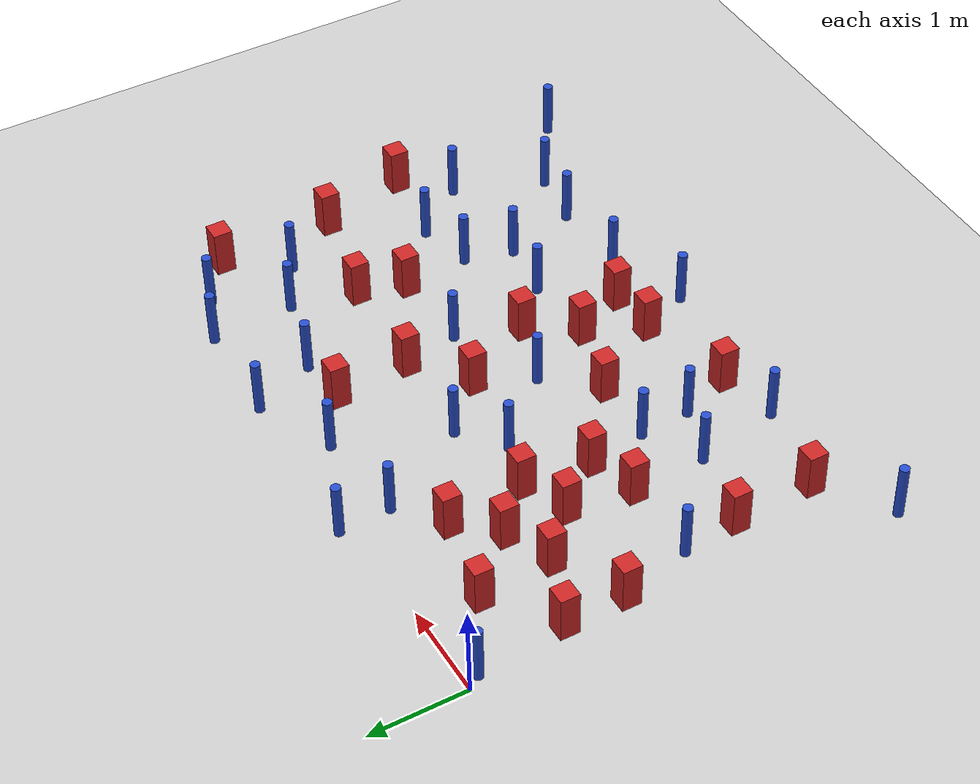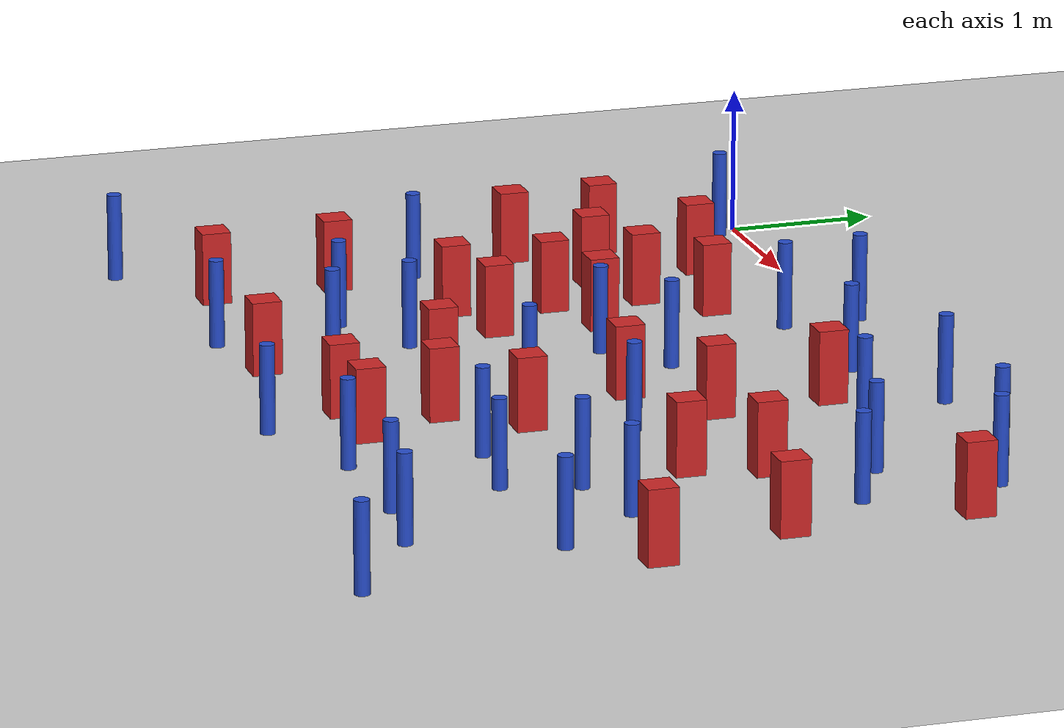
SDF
<sdf version="1.6">
 <world name="default">
  <model name="ground_plane">
   <static>1</static>
   <link name="link">
    <collision name="collision">
     <geometry><plane><normal>0 0 1</normal><size>100 100</size></plane></geometry>
     <surface><friction><ode><mu>100</mu><mu2>50</mu2></ode></friction></surface>
    </collision>
    <visual name="visual">
     <cast_shadows>0</cast_shadows>
     <geometry><plane><normal>0 0 1</normal><size>100 100</size></plane></geometry>
     <material>
      <ambient>1.0 1.0 1.0 1.0</ambient>
      <diffuse>0.8 0.8 0.8 1.0</diffuse>
      <specular>0.01 0.01 0.01 1.000000</specular>
     </material>
    </visual>
   </link>
  </model>
  <model name="NamedLocations">
   <static>true</static>
   <link name="DefaultStart"><pose>8.5 0 0 0 0 3.14</pose></link>
  </model>
  <model name="square_post_obstacle2">
   <static>true</static>
   <pose>6.3926269093 -2.64157302323 1.91545236811e-07 -7.35059704564e-06 1.12565212e-07 2.39332434364e-05</pose>
   <link name="link">
    <pose>0 0 0.25 0 -0 0</pose>
    <inertial>
     <mass>100</mass>
     <inertia>
      <ixx>0.166667</ixx>
      <ixy>0</ixy>
      <ixz>0</ixz>
      <iyy>0.166667</iyy>
      <iyz>0</iyz>
      <izz>0.166667</izz>
     </inertia>
    </inertial>
    <collision name="collision"><geometry><box><size>.2 .2 .5</size></box></geometry></collision>
    <visual name="visual">
     <geometry><box><size>.2 .2 .5</size></box></geometry>
     <material>
      <script><name>Gazebo/Red</name><uri>file://media/materials/scripts/gazebo.material</uri></script>
     </material>
    </visual>
   </link>
  </model>
  <model name="square_post_obstacle3">
   <static>true</static>
   <pose>3.27385072812 -1.84511736935 1.91545236811e-07 -7.35059704564e-06 1.12565212e-07 2.39332434364e-05</pose>
   <link name="link">
    <pose>0 0 0.25 0 -0 0</pose>
    <inertial>
     <mass>100</mass>
     <inertia>
      <ixx>0.166667</ixx>
      <ixy>0</ixy>
      <ixz>0</ixz>
      <iyy>0.166667</iyy>
      <iyz>0</iyz>
      <izz>0.166667</izz>
     </inertia>
    </inertial>
    <collision name="collision"><geometry><box><size>.2 .2 .5</size></box></geometry></collision>
    <visual name="visual">
     <geometry><box><size>.2 .2 .5</size></box></geometry>
     <material>
      <script><name>Gazebo/Red</name><uri>file://media/materials/scripts/gazebo.material</uri></script>
     </material>
    </visual>
   </link>
  </model>
  <model name="square_post_obstacle6">
   <static>true</static>
   <pose>6.1314204804 -1.70435228454 1.91545236811e-07 -7.35059704564e-06 1.12565212e-07 2.39332434364e-05</pose>
   <link name="link">
    <pose>0 0 0.25 0 -0 0</pose>
    <inertial>
     <mass>100</mass>
     <inertia>
      <ixx>0.166667</ixx>
      <ixy>0</ixy>
      <ixz>0</ixz>
      <iyy>0.166667</iyy>
      <iyz>0</iyz>
      <izz>0.166667</izz>
     </inertia>
    </inertial>
    <collision name="collision"><geometry><box><size>.2 .2 .5</size></box></geometry></collision>
    <visual name="visual">
     <geometry><box><size>.2 .2 .5</size></box></geometry>
     <material>
      <script><name>Gazebo/Red</name><uri>file://media/materials/scripts/gazebo.material</uri></script>
     </material>
    </visual>
   </link>
  </model>
  <model name="pole_obstacle9">
   <static>true</static>
   <pose>3.03887440964 -2.42761712967 7.38925637345e-09 -8.47170692798e-08 1.24976764939e-08 -1.74513093025e-07</pose>
   <link name="link">
    <pose>0 0 0.3 0 -0 0</pose>
    <inertial>
     <mass>1</mass>
     <inertia><ixx>0.145833</ixx><ixy>0</ixy><ixz>0</ixz><iyy>0.145833</iyy><iyz>0</iyz><izz>0.125</izz></inertia>
    </inertial>
    <collision name="collision">
     <geometry><cylinder><radius>0.05</radius><length>.6</length></cylinder></geometry>
    </collision>
    <visual name="visual">
     <geometry><cylinder><radius>0.05</radius><length>.6</length></cylinder></geometry>
     <material>
      <script><name>Gazebo/Blue</name><uri>file://media/materials/scripts/gazebo.material</uri></script>
     </material>
    </visual>
   </link>
  </model>
  <model name="pole_obstacle15">
   <static>true</static>
   <pose>5.99334380468 -3.10721899709 7.38925637345e-09 -8.47170692798e-08 1.24976764937e-08 -1.74513093023e-07</pose>
   <link name="link">
    <pose>0 0 0.3 0 -0 0</pose>
    <inertial>
     <mass>1</mass>
     <inertia><ixx>0.145833</ixx><ixy>0</ixy><ixz>0</ixz><iyy>0.145833</iyy><iyz>0</iyz><izz>0.125</izz></inertia>
    </inertial>
    <collision name="collision">
     <geometry><cylinder><radius>0.05</radius><length>.6</length></cylinder></geometry>
    </collision>
    <visual name="visual">
     <geometry><cylinder><radius>0.05</radius><length>.6</length></cylinder></geometry>
     <material>
      <script><name>Gazebo/Blue</name><uri>file://media/materials/scripts/gazebo.material</uri></script>
     </material>
    </visual>
   </link>
  </model>
  <model name="pole_obstacle19">
   <static>true</static>
   <pose>5.63549042282 -4.02155629917 7.38925637345e-09 -8.47170692796e-08 1.24976764791e-08 -1.74513093031e-07</pose>
   <link name="link">
    <pose>0 0 0.3 0 -0 0</pose>
    <inertial>
     <mass>1</mass>
     <inertia><ixx>0.145833</ixx><ixy>0</ixy><ixz>0</ixz><iyy>0.145833</iyy><iyz>0</iyz><izz>0.125</izz></inertia>
    </inertial>
    <collision name="collision">
     <geometry><cylinder><radius>0.05</radius><length>.6</length></cylinder></geometry>
    </collision>
    <visual name="visual">
     <geometry><cylinder><radius>0.05</radius><length>.6</length></cylinder></geometry>
     <material>
      <script><name>Gazebo/Blue</name><uri>file://media/materials/scripts/gazebo.material</uri></script>
     </material>
    </visual>
   </link>
  </model>
  <model name="square_post_obstacle16">
   <static>true</static>
   <pose>2.55825330878 -2.89611396729 1.91545236811e-07 -7.35059704564e-06 1.12565212e-07 2.39332434364e-05</pose>
   <link name="link">
    <pose>0 0 0.25 0 -0 0</pose>
    <inertial>
     <mass>100</mass>
     <inertia>
      <ixx>0.166667</ixx>
      <ixy>0</ixy>
      <ixz>0</ixz>
      <iyy>0.166667</iyy>
      <iyz>0</iyz>
      <izz>0.166667</izz>
     </inertia>
    </inertial>
    <collision name="collision"><geometry><box><size>.2 .2 .5</size></box></geometry></collision>
    <visual name="visual">
     <geometry><box><size>.2 .2 .5</size></box></geometry>
     <material>
      <script><name>Gazebo/Red</name><uri>file://media/materials/scripts/gazebo.material</uri></script>
     </material>
    </visual>
   </link>
  </model>
  <model name="pole_obstacle20">
   <static>true</static>
   <pose>2.22428863195 -0.391369599084 7.38925637345e-09 -8.471706928e-08 1.24976765172e-08 -1.74513093013e-07</pose>
   <link name="link">
    <pose>0 0 0.3 0 -0 0</pose>
    <inertial>
     <mass>1</mass>
     <inertia><ixx>0.145833</ixx><ixy>0</ixy><ixz>0</ixz><iyy>0.145833</iyy><iyz>0</iyz><izz>0.125</izz></inertia>
    </inertial>
    <collision name="collision">
     <geometry><cylinder><radius>0.05</radius><length>.6</length></cylinder></geometry>
    </collision>
    <visual name="visual">
     <geometry><cylinder><radius>0.05</radius><length>.6</length></cylinder></geometry>
     <material>
      <script><name>Gazebo/Blue</name><uri>file://media/materials/scripts/gazebo.material</uri></script>
     </material>
    </visual>
   </link>
  </model>
  <model name="square_post_obstacle18">
   <static>true</static>
   <pose>0.514636242237 -3.88962319908 1.91545236811e-07 -7.35059704564e-06 1.12565212e-07 2.39332434364e-05</pose>
   <link name="link">
    <pose>0 0 0.25 0 -0 0</pose>
    <inertial>
     <mass>100</mass>
     <inertia>
      <ixx>0.166667</ixx>
      <ixy>0</ixy>
      <ixz>0</ixz>
      <iyy>0.166667</iyy>
      <iyz>0</iyz>
      <izz>0.166667</izz>
     </inertia>
    </inertial>
    <collision name="collision"><geometry><box><size>.2 .2 .5</size></box></geometry></collision>
    <visual name="visual">
     <geometry><box><size>.2 .2 .5</size></box></geometry>
     <material>
      <script><name>Gazebo/Red</name><uri>file://media/materials/scripts/gazebo.material</uri></script>
     </material>
    </visual>
   </link>
  </model>
  <model name="pole_obstacle27">
   <static>true</static>
   <pose>4.81260913132 -3.16883547511 7.38925637345e-09 -8.47170692798e-08 1.24976764937e-08 -1.74513093023e-07</pose>
   <link name="link">
    <pose>0 0 0.3 0 -0 0</pose>
    <inertial>
     <mass>1</mass>
     <inertia><ixx>0.145833</ixx><ixy>0</ixy><ixz>0</ixz><iyy>0.145833</iyy><iyz>0</iyz><izz>0.125</izz></inertia>
    </inertial>
    <collision name="collision">
     <geometry><cylinder><radius>0.05</radius><length>.6</length></cylinder></geometry>
    </collision>
    <visual name="visual">
     <geometry><cylinder><radius>0.05</radius><length>.6</length></cylinder></geometry>
     <material>
      <script><name>Gazebo/Blue</name><uri>file://media/materials/scripts/gazebo.material</uri></script>
     </material>
    </visual>
   </link>
  </model>
  <model name="pole_obstacle45">
   <static>true</static>
   <pose>2.36693494782 -1.72952873649 7.38925637345e-09 -8.471706928e-08 1.24976765152e-08 -1.74513093012e-07</pose>
   <link name="link">
    <pose>0 0 0.3 0 -0 0</pose>
    <inertial>
     <mass>1</mass>
     <inertia><ixx>0.145833</ixx><ixy>0</ixy><ixz>0</ixz><iyy>0.145833</iyy><iyz>0</iyz><izz>0.125</izz></inertia>
    </inertial>
    <collision name="collision">
     <geometry><cylinder><radius>0.05</radius><length>.6</length></cylinder></geometry>
    </collision>
    <visual name="visual">
     <geometry><cylinder><radius>0.05</radius><length>.6</length></cylinder></geometry>
     <material>
      <script><name>Gazebo/Blue</name><uri>file://media/materials/scripts/gazebo.material</uri></script>
     </material>
    </visual>
   </link>
  </model>
  <model name="pole_obstacle46">
   <static>true</static>
   <pose>5.72600170313 -1.09125582799 7.38925637345e-09 -8.471706928e-08 1.24976765134e-08 -1.74513093015e-07</pose>
   <link name="link">
    <pose>0 0 0.3 0 -0 0</pose>
    <inertial>
     <mass>1</mass>
     <inertia><ixx>0.145833</ixx><ixy>0</ixy><ixz>0</ixz><iyy>0.145833</iyy><iyz>0</iyz><izz>0.125</izz></inertia>
    </inertial>
    <collision name="collision">
     <geometry><cylinder><radius>0.05</radius><length>.6</length></cylinder></geometry>
    </collision>
    <visual name="visual">
     <geometry><cylinder><radius>0.05</radius><length>.6</length></cylinder></geometry>
     <material>
      <script><name>Gazebo/Blue</name><uri>file://media/materials/scripts/gazebo.material</uri></script>
     </material>
    </visual>
   </link>
  </model>
  <model name="pole_obstacle55">
   <static>true</static>
   <pose>5.19176129301 -0.812803538557 7.38925637345e-09 -8.47170692799e-08 1.24976765038e-08 -1.74513093018e-07</pose>
   <link name="link">
    <pose>0 0 0.3 0 -0 0</pose>
    <inertial>
     <mass>1</mass>
     <inertia><ixx>0.145833</ixx><ixy>0</ixy><ixz>0</ixz><iyy>0.145833</iyy><iyz>0</iyz><izz>0.125</izz></inertia>
    </inertial>
    <collision name="collision">
     <geometry><cylinder><radius>0.05</radius><length>.6</length></cylinder></geometry>
    </collision>
    <visual name="visual">
     <geometry><cylinder><radius>0.05</radius><length>.6</length></cylinder></geometry>
     <material>
      <script><name>Gazebo/Blue</name><uri>file://media/materials/scripts/gazebo.material</uri></script>
     </material>
    </visual>
   </link>
  </model>
  <model name="pole_obstacle62">
   <static>true</static>
   <pose>3.34065110433 -4.27121757846 7.38925637345e-09 -8.47170692798e-08 1.24976765033e-08 -1.74513093019e-07</pose>
   <link name="link">
    <pose>0 0 0.3 0 -0 0</pose>
    <inertial>
     <mass>1</mass>
     <inertia><ixx>0.145833</ixx><ixy>0</ixy><ixz>0</ixz><iyy>0.145833</iyy><iyz>0</iyz><izz>0.125</izz></inertia>
    </inertial>
    <collision name="collision">
     <geometry><cylinder><radius>0.05</radius><length>.6</length></cylinder></geometry>
    </collision>
    <visual name="visual">
     <geometry><cylinder><radius>0.05</radius><length>.6</length></cylinder></geometry>
     <material>
      <script><name>Gazebo/Blue</name><uri>file://media/materials/scripts/gazebo.material</uri></script>
     </material>
    </visual>
   </link>
  </model>
  <model name="pole_obstacle70">
   <static>true</static>
   <pose>-0.162355351568 -4.40679798195 7.38925637345e-09 -8.47170692799e-08 1.24976765043e-08 -1.74513093019e-07</pose>
   <link name="link">
    <pose>0 0 0.3 0 -0 0</pose>
    <inertial>
     <mass>1</mass>
     <inertia><ixx>0.145833</ixx><ixy>0</ixy><ixz>0</ixz><iyy>0.145833</iyy><iyz>0</iyz><izz>0.125</izz></inertia>
    </inertial>
    <collision name="collision">
     <geometry><cylinder><radius>0.05</radius><length>.6</length></cylinder></geometry>
    </collision>
    <visual name="visual">
     <geometry><cylinder><radius>0.05</radius><length>.6</length></cylinder></geometry>
     <material>
      <script><name>Gazebo/Blue</name><uri>file://media/materials/scripts/gazebo.material</uri></script>
     </material>
    </visual>
   </link>
  </model>
  <model name="square_post_obstacle60">
   <static>true</static>
   <pose>3.82546768321 -1.41174649377 1.91545236811e-07 -7.35059704564e-06 1.12565212e-07 2.39332434364e-05</pose>
   <link name="link">
    <pose>0 0 0.25 0 -0 0</pose>
    <inertial>
     <mass>100</mass>
     <inertia>
      <ixx>0.166667</ixx>
      <ixy>0</ixy>
      <ixz>0</ixz>
      <iyy>0.166667</iyy>
      <iyz>0</iyz>
      <izz>0.166667</izz>
     </inertia>
    </inertial>
    <collision name="collision"><geometry><box><size>.2 .2 .5</size></box></geometry></collision>
    <visual name="visual">
     <geometry><box><size>.2 .2 .5</size></box></geometry>
     <material>
      <script><name>Gazebo/Red</name><uri>file://media/materials/scripts/gazebo.material</uri></script>
     </material>
    </visual>
   </link>
  </model>
  <model name="square_post_obstacle61">
   <static>true</static>
   <pose>3.09541691466 -3.71565374663 1.91545236811e-07 -7.35059704564e-06 1.12565212e-07 2.39332434364e-05</pose>
   <link name="link">
    <pose>0 0 0.25 0 -0 0</pose>
    <inertial>
     <mass>100</mass>
     <inertia>
      <ixx>0.166667</ixx>
      <ixy>0</ixy>
      <ixz>0</ixz>
      <iyy>0.166667</iyy>
      <iyz>0</iyz>
      <izz>0.166667</izz>
     </inertia>
    </inertial>
    <collision name="collision"><geometry><box><size>.2 .2 .5</size></box></geometry></collision>
    <visual name="visual">
     <geometry><box><size>.2 .2 .5</size></box></geometry>
     <material>
      <script><name>Gazebo/Red</name><uri>file://media/materials/scripts/gazebo.material</uri></script>
     </material>
    </visual>
   </link>
  </model>
  <model name="pole_obstacle71">
   <static>true</static>
   <pose>5.14210738571 0.0508689174394 7.38925637345e-09 -8.471706928e-08 1.24976765155e-08 -1.74513093014e-07</pose>
   <link name="link">
    <pose>0 0 0.3 0 -0 0</pose>
    <inertial>
     <mass>1</mass>
     <inertia><ixx>0.145833</ixx><ixy>0</ixy><ixz>0</ixz><iyy>0.145833</iyy><iyz>0</iyz><izz>0.125</izz></inertia>
    </inertial>
    <collision name="collision">
     <geometry><cylinder><radius>0.05</radius><length>.6</length></cylinder></geometry>
    </collision>
    <visual name="visual">
     <geometry><cylinder><radius>0.05</radius><length>.6</length></cylinder></geometry>
     <material>
      <script><name>Gazebo/Blue</name><uri>file://media/materials/scripts/gazebo.material</uri></script>
     </material>
    </visual>
   </link>
  </model>
  <model name="pole_obstacle78">
   <static>true</static>
   <pose>1.91681095003 -3.44139739573 7.38925637345e-09 -8.47170692799e-08 1.24976765053e-08 -1.74513093017e-07</pose>
   <link name="link">
    <pose>0 0 0.3 0 -0 0</pose>
    <inertial>
     <mass>1</mass>
     <inertia><ixx>0.145833</ixx><ixy>0</ixy><ixz>0</ixz><iyy>0.145833</iyy><iyz>0</iyz><izz>0.125</izz></inertia>
    </inertial>
    <collision name="collision">
     <geometry><cylinder><radius>0.05</radius><length>.6</length></cylinder></geometry>
    </collision>
    <visual name="visual">
     <geometry><cylinder><radius>0.05</radius><length>.6</length></cylinder></geometry>
     <material>
      <script><name>Gazebo/Blue</name><uri>file://media/materials/scripts/gazebo.material</uri></script>
     </material>
    </visual>
   </link>
  </model>
  <model name="pole_obstacle79">
   <static>true</static>
   <pose>4.95157832996 -2.67029670828 7.38925637345e-09 -8.47170692798e-08 1.24976764937e-08 -1.74513093023e-07</pose>
   <link name="link">
    <pose>0 0 0.3 0 -0 0</pose>
    <inertial>
     <mass>1</mass>
     <inertia><ixx>0.145833</ixx><ixy>0</ixy><ixz>0</ixz><iyy>0.145833</iyy><iyz>0</iyz><izz>0.125</izz></inertia>
    </inertial>
    <collision name="collision">
     <geometry><cylinder><radius>0.05</radius><length>.6</length></cylinder></geometry>
    </collision>
    <visual name="visual">
     <geometry><cylinder><radius>0.05</radius><length>.6</length></cylinder></geometry>
     <material>
      <script><name>Gazebo/Blue</name><uri>file://media/materials/scripts/gazebo.material</uri></script>
     </material>
    </visual>
   </link>
  </model>
  <model name="square_post_obstacle78">
   <static>true</static>
   <pose>0.469554378919 -3.02683524123 1.91545236811e-07 -7.35059704564e-06 1.12565212e-07 2.39332434364e-05</pose>
   <link name="link">
    <pose>0 0 0.25 0 -0 0</pose>
    <inertial>
     <mass>100</mass>
     <inertia>
      <ixx>0.166667</ixx>
      <ixy>0</ixy>
      <ixz>0</ixz>
      <iyy>0.166667</iyy>
      <iyz>0</iyz>
      <izz>0.166667</izz>
     </inertia>
    </inertial>
    <collision name="collision"><geometry><box><size>.2 .2 .5</size></box></geometry></collision>
    <visual name="visual">
     <geometry><box><size>.2 .2 .5</size></box></geometry>
     <material>
      <script><name>Gazebo/Red</name><uri>file://media/materials/scripts/gazebo.material</uri></script>
     </material>
    </visual>
   </link>
  </model>
  <model name="square_post_obstacle89">
   <static>true</static>
   <pose>1.25679714308 -2.42203078586 1.91545236811e-07 -7.35059704564e-06 1.12565212e-07 2.39332434364e-05</pose>
   <link name="link">
    <pose>0 0 0.25 0 -0 0</pose>
    <inertial>
     <mass>100</mass>
     <inertia>
      <ixx>0.166667</ixx>
      <ixy>0</ixy>
      <ixz>0</ixz>
      <iyy>0.166667</iyy>
      <iyz>0</iyz>
      <izz>0.166667</izz>
     </inertia>
    </inertial>
    <collision name="collision"><geometry><box><size>.2 .2 .5</size></box></geometry></collision>
    <visual name="visual">
     <geometry><box><size>.2 .2 .5</size></box></geometry>
     <material>
      <script><name>Gazebo/Red</name><uri>file://media/materials/scripts/gazebo.material</uri></script>
     </material>
    </visual>
   </link>
  </model>
  <model name="square_post_obstacle90">
   <static>true</static>
   <pose>6.12686189905 -0.49162726828 1.91545236811e-07 -7.35059704564e-06 1.12565212e-07 2.39332434364e-05</pose>
   <link name="link">
    <pose>0 0 0.25 0 -0 0</pose>
    <inertial>
     <mass>100</mass>
     <inertia>
      <ixx>0.166667</ixx>
      <ixy>0</ixy>
      <ixz>0</ixz>
      <iyy>0.166667</iyy>
      <iyz>0</iyz>
      <izz>0.166667</izz>
     </inertia>
    </inertial>
    <collision name="collision"><geometry><box><size>.2 .2 .5</size></box></geometry></collision>
    <visual name="visual">
     <geometry><box><size>.2 .2 .5</size></box></geometry>
     <material>
      <script><name>Gazebo/Red</name><uri>file://media/materials/scripts/gazebo.material</uri></script>
     </material>
    </visual>
   </link>
  </model>
  <model name="square_post_obstacle97">
   <static>true</static>
   <pose>3.36069773524 -3.1268799618 1.91545236811e-07 -7.35059704564e-06 1.12565212e-07 2.39332434364e-05</pose>
   <link name="link">
    <pose>0 0 0.25 0 -0 0</pose>
    <inertial>
     <mass>100</mass>
     <inertia>
      <ixx>0.166667</ixx>
      <ixy>0</ixy>
      <ixz>0</ixz>
      <iyy>0.166667</iyy>
      <iyz>0</iyz>
      <izz>0.166667</izz>
     </inertia>
    </inertial>
    <collision name="collision"><geometry><box><size>.2 .2 .5</size></box></geometry></collision>
    <visual name="visual">
     <geometry><box><size>.2 .2 .5</size></box></geometry>
     <material>
      <script><name>Gazebo/Red</name><uri>file://media/materials/scripts/gazebo.material</uri></script>
     </material>
    </visual>
   </link>
  </model>
  <model name="pole_obstacle103">
   <static>true</static>
   <pose>5.66957192668 -0.15631160696 7.38925637345e-09 -8.471706928e-08 1.24976765188e-08 -1.74513093011e-07</pose>
   <link name="link">
    <pose>0 0 0.3 0 -0 0</pose>
    <inertial>
     <mass>1</mass>
     <inertia><ixx>0.145833</ixx><ixy>0</ixy><ixz>0</ixz><iyy>0.145833</iyy><iyz>0</iyz><izz>0.125</izz></inertia>
    </inertial>
    <collision name="collision">
     <geometry><cylinder><radius>0.05</radius><length>.6</length></cylinder></geometry>
    </collision>
    <visual name="visual">
     <geometry><cylinder><radius>0.05</radius><length>.6</length></cylinder></geometry>
     <material>
      <script><name>Gazebo/Blue</name><uri>file://media/materials/scripts/gazebo.material</uri></script>
     </material>
    </visual>
   </link>
  </model>
  <model name="square_post_obstacle100">
   <static>true</static>
   <pose>1.74360261674 -0.739991999702 1.91545236811e-07 -7.35059704564e-06 1.12565212e-07 2.39332434364e-05</pose>
   <link name="link">
    <pose>0 0 0.25 0 -0 0</pose>
    <inertial>
     <mass>100</mass>
     <inertia>
      <ixx>0.166667</ixx>
      <ixy>0</ixy>
      <ixz>0</ixz>
      <iyy>0.166667</iyy>
      <iyz>0</iyz>
      <izz>0.166667</izz>
     </inertia>
    </inertial>
    <collision name="collision"><geometry><box><size>.2 .2 .5</size></box></geometry></collision>
    <visual name="visual">
     <geometry><box><size>.2 .2 .5</size></box></geometry>
     <material>
      <script><name>Gazebo/Red</name><uri>file://media/materials/scripts/gazebo.material</uri></script>
     </material>
    </visual>
   </link>
  </model>
  <model name="pole_obstacle109">
   <static>true</static>
   <pose>0.101150819046 -0.137770015602 7.38925637345e-09 -8.47170692798e-08 1.2497676491e-08 -1.74513093026e-07</pose>
   <link name="link">
    <pose>0 0 0.3 0 -0 0</pose>
    <inertial>
     <mass>1</mass>
     <inertia><ixx>0.145833</ixx><ixy>0</ixy><ixz>0</ixz><iyy>0.145833</iyy><iyz>0</iyz><izz>0.125</izz></inertia>
    </inertial>
    <collision name="collision">
     <geometry><cylinder><radius>0.05</radius><length>.6</length></cylinder></geometry>
    </collision>
    <visual name="visual">
     <geometry><cylinder><radius>0.05</radius><length>.6</length></cylinder></geometry>
     <material>
      <script><name>Gazebo/Blue</name><uri>file://media/materials/scripts/gazebo.material</uri></script>
     </material>
    </visual>
   </link>
  </model>
  <model name="square_post_obstacle107">
   <static>true</static>
   <pose>3.7143663494 -2.64420694901 1.91545236811e-07 -7.35059704564e-06 1.12565212e-07 2.39332434364e-05</pose>
   <link name="link">
    <pose>0 0 0.25 0 -0 0</pose>
    <inertial>
     <mass>100</mass>
     <inertia>
      <ixx>0.166667</ixx>
      <ixy>0</ixy>
      <ixz>0</ixz>
      <iyy>0.166667</iyy>
      <iyz>0</iyz>
      <izz>0.166667</izz>
     </inertia>
    </inertial>
    <collision name="collision"><geometry><box><size>.2 .2 .5</size></box></geometry></collision>
    <visual name="visual">
     <geometry><box><size>.2 .2 .5</size></box></geometry>
     <material>
      <script><name>Gazebo/Red</name><uri>file://media/materials/scripts/gazebo.material</uri></script>
     </material>
    </visual>
   </link>
  </model>
  <model name="pole_obstacle112">
   <static>true</static>
   <pose>1.31474869188 -3.22986475585 7.38925637345e-09 -8.47170692799e-08 1.24976765053e-08 -1.74513093017e-07</pose>
   <link name="link">
    <pose>0 0 0.3 0 -0 0</pose>
    <inertial>
     <mass>1</mass>
     <inertia><ixx>0.145833</ixx><ixy>0</ixy><ixz>0</ixz><iyy>0.145833</iyy><iyz>0</iyz><izz>0.125</izz></inertia>
    </inertial>
    <collision name="collision">
     <geometry><cylinder><radius>0.05</radius><length>.6</length></cylinder></geometry>
    </collision>
    <visual name="visual">
     <geometry><cylinder><radius>0.05</radius><length>.6</length></cylinder></geometry>
     <material>
      <script><name>Gazebo/Blue</name><uri>file://media/materials/scripts/gazebo.material</uri></script>
     </material>
    </visual>
   </link>
  </model>
  <model name="pole_obstacle113">
   <static>true</static>
   <pose>2.79926930364 -1.37641751942 7.38925637345e-09 -8.471706928e-08 1.24976765152e-08 -1.74513093012e-07</pose>
   <link name="link">
    <pose>0 0 0.3 0 -0 0</pose>
    <inertial>
     <mass>1</mass>
     <inertia><ixx>0.145833</ixx><ixy>0</ixy><ixz>0</ixz><iyy>0.145833</iyy><iyz>0</iyz><izz>0.125</izz></inertia>
    </inertial>
    <collision name="collision">
     <geometry><cylinder><radius>0.05</radius><length>.6</length></cylinder></geometry>
    </collision>
    <visual name="visual">
     <geometry><cylinder><radius>0.05</radius><length>.6</length></cylinder></geometry>
     <material>
      <script><name>Gazebo/Blue</name><uri>file://media/materials/scripts/gazebo.material</uri></script>
     </material>
    </visual>
   </link>
  </model>
  <model name="pole_obstacle118">
   <static>true</static>
   <pose>0.410833479511 -2.45047875044 7.38925637345e-09 -8.471706928e-08 1.24976765084e-08 -1.74513093017e-07</pose>
   <link name="link">
    <pose>0 0 0.3 0 -0 0</pose>
    <inertial>
     <mass>1</mass>
     <inertia><ixx>0.145833</ixx><ixy>0</ixy><ixz>0</ixz><iyy>0.145833</iyy><iyz>0</iyz><izz>0.125</izz></inertia>
    </inertial>
    <collision name="collision">
     <geometry><cylinder><radius>0.05</radius><length>.6</length></cylinder></geometry>
    </collision>
    <visual name="visual">
     <geometry><cylinder><radius>0.05</radius><length>.6</length></cylinder></geometry>
     <material>
      <script><name>Gazebo/Blue</name><uri>file://media/materials/scripts/gazebo.material</uri></script>
     </material>
    </visual>
   </link>
  </model>
  <model name="pole_obstacle120">
   <static>true</static>
   <pose>1.49718743936 -4.12298413668 7.38925637345e-09 -8.47170692799e-08 1.24976765033e-08 -1.74513093018e-07</pose>
   <link name="link">
    <pose>0 0 0.3 0 -0 0</pose>
    <inertial>
     <mass>1</mass>
     <inertia><ixx>0.145833</ixx><ixy>0</ixy><ixz>0</ixz><iyy>0.145833</iyy><iyz>0</iyz><izz>0.125</izz></inertia>
    </inertial>
    <collision name="collision">
     <geometry><cylinder><radius>0.05</radius><length>.6</length></cylinder></geometry>
    </collision>
    <visual name="visual">
     <geometry><cylinder><radius>0.05</radius><length>.6</length></cylinder></geometry>
     <material>
      <script><name>Gazebo/Blue</name><uri>file://media/materials/scripts/gazebo.material</uri></script>
     </material>
    </visual>
   </link>
  </model>
  <model name="square_post_obstacle128">
   <static>true</static>
   <pose>1.83601668178 -1.56139847218 1.91545236811e-07 -7.35059704564e-06 1.12565212e-07 2.39332434364e-05</pose>
   <link name="link">
    <pose>0 0 0.25 0 -0 0</pose>
    <inertial>
     <mass>100</mass>
     <inertia>
      <ixx>0.166667</ixx>
      <ixy>0</ixy>
      <ixz>0</ixz>
      <iyy>0.166667</iyy>
      <iyz>0</iyz>
      <izz>0.166667</izz>
     </inertia>
    </inertial>
    <collision name="collision"><geometry><box><size>.2 .2 .5</size></box></geometry></collision>
    <visual name="visual">
     <geometry><box><size>.2 .2 .5</size></box></geometry>
     <material>
      <script><name>Gazebo/Red</name><uri>file://media/materials/scripts/gazebo.material</uri></script>
     </material>
    </visual>
   </link>
  </model>
  <model name="square_post_obstacle131">
   <static>true</static>
   <pose>3.76556120237 -0.624315200118 1.91545236811e-07 -7.35059704564e-06 1.12565212e-07 2.39332434364e-05</pose>
   <link name="link">
    <pose>0 0 0.25 0 -0 0</pose>
    <inertial>
     <mass>100</mass>
     <inertia>
      <ixx>0.166667</ixx>
      <ixy>0</ixy>
      <ixz>0</ixz>
      <iyy>0.166667</iyy>
      <iyz>0</iyz>
      <izz>0.166667</izz>
     </inertia>
    </inertial>
    <collision name="collision"><geometry><box><size>.2 .2 .5</size></box></geometry></collision>
    <visual name="visual">
     <geometry><box><size>.2 .2 .5</size></box></geometry>
     <material>
      <script><name>Gazebo/Red</name><uri>file://media/materials/scripts/gazebo.material</uri></script>
     </material>
    </visual>
   </link>
  </model>
  <model name="pole_obstacle139">
   <static>true</static>
   <pose>5.53098034505 -2.53295311024 7.38925637345e-09 -8.47170692798e-08 1.24976764937e-08 -1.74513093023e-07</pose>
   <link name="link">
    <pose>0 0 0.3 0 -0 0</pose>
    <inertial>
     <mass>1</mass>
     <inertia><ixx>0.145833</ixx><ixy>0</ixy><ixz>0</ixz><iyy>0.145833</iyy><iyz>0</iyz><izz>0.125</izz></inertia>
    </inertial>
    <collision name="collision">
     <geometry><cylinder><radius>0.05</radius><length>.6</length></cylinder></geometry>
    </collision>
    <visual name="visual">
     <geometry><cylinder><radius>0.05</radius><length>.6</length></cylinder></geometry>
     <material>
      <script><name>Gazebo/Blue</name><uri>file://media/materials/scripts/gazebo.material</uri></script>
     </material>
    </visual>
   </link>
  </model>
  <model name="pole_obstacle140">
   <static>true</static>
   <pose>6.41395058422 -4.51445730763 7.38925637345e-09 -8.47170692796e-08 1.24976764786e-08 -1.74513093032e-07</pose>
   <link name="link">
    <pose>0 0 0.3 0 -0 0</pose>
    <inertial>
     <mass>1</mass>
     <inertia><ixx>0.145833</ixx><ixy>0</ixy><ixz>0</ixz><iyy>0.145833</iyy><iyz>0</iyz><izz>0.125</izz></inertia>
    </inertial>
    <collision name="collision">
     <geometry><cylinder><radius>0.05</radius><length>.6</length></cylinder></geometry>
    </collision>
    <visual name="visual">
     <geometry><cylinder><radius>0.05</radius><length>.6</length></cylinder></geometry>
     <material>
      <script><name>Gazebo/Blue</name><uri>file://media/materials/scripts/gazebo.material</uri></script>
     </material>
    </visual>
   </link>
  </model>
  <model name="pole_obstacle149">
   <static>true</static>
   <pose>5.02867331683 -3.93379557059 7.38925637345e-09 -8.47170692798e-08 1.24976764937e-08 -1.74513093023e-07</pose>
   <link name="link">
    <pose>0 0 0.3 0 -0 0</pose>
    <inertial>
     <mass>1</mass>
     <inertia><ixx>0.145833</ixx><ixy>0</ixy><ixz>0</ixz><iyy>0.145833</iyy><iyz>0</iyz><izz>0.125</izz></inertia>
    </inertial>
    <collision name="collision">
     <geometry><cylinder><radius>0.05</radius><length>.6</length></cylinder></geometry>
    </collision>
    <visual name="visual">
     <geometry><cylinder><radius>0.05</radius><length>.6</length></cylinder></geometry>
     <material>
      <script><name>Gazebo/Blue</name><uri>file://media/materials/scripts/gazebo.material</uri></script>
     </material>
    </visual>
   </link>
  </model>
  <model name="pole_obstacle156">
   <static>true</static>
   <pose>4.18141038029 -3.08783360006 7.38925637345e-09 -8.47170692798e-08 1.24976764937e-08 -1.74513093023e-07</pose>
   <link name="link">
    <pose>0 0 0.3 0 -0 0</pose>
    <inertial>
     <mass>1</mass>
     <inertia><ixx>0.145833</ixx><ixy>0</ixy><ixz>0</ixz><iyy>0.145833</iyy><iyz>0</iyz><izz>0.125</izz></inertia>
    </inertial>
    <collision name="collision">
     <geometry><cylinder><radius>0.05</radius><length>.6</length></cylinder></geometry>
    </collision>
    <visual name="visual">
     <geometry><cylinder><radius>0.05</radius><length>.6</length></cylinder></geometry>
     <material>
      <script><name>Gazebo/Blue</name><uri>file://media/materials/scripts/gazebo.material</uri></script>
     </material>
    </visual>
   </link>
  </model>
  <model name="square_post_obstacle153">
   <static>true</static>
   <pose>1.35434034984 -1.76014933605 1.91545236811e-07 -7.35059704564e-06 1.12565212e-07 2.39332434364e-05</pose>
   <link name="link">
    <pose>0 0 0.25 0 -0 0</pose>
    <inertial>
     <mass>100</mass>
     <inertia>
      <ixx>0.166667</ixx>
      <ixy>0</ixy>
      <ixz>0</ixz>
      <iyy>0.166667</iyy>
      <iyz>0</iyz>
      <izz>0.166667</izz>
     </inertia>
    </inertial>
    <collision name="collision"><geometry><box><size>.2 .2 .5</size></box></geometry></collision>
    <visual name="visual">
     <geometry><box><size>.2 .2 .5</size></box></geometry>
     <material>
      <script><name>Gazebo/Red</name><uri>file://media/materials/scripts/gazebo.material</uri></script>
     </material>
    </visual>
   </link>
  </model>
  <model name="square_post_obstacle156">
   <static>true</static>
   <pose>1.37595150564 -1.12139963987 1.91545236811e-07 -7.35059704564e-06 1.12565212e-07 2.39332434364e-05</pose>
   <link name="link">
    <pose>0 0 0.25 0 -0 0</pose>
    <inertial>
     <mass>100</mass>
     <inertia>
      <ixx>0.166667</ixx>
      <ixy>0</ixy>
      <ixz>0</ixz>
      <iyy>0.166667</iyy>
      <iyz>0</iyz>
      <izz>0.166667</izz>
     </inertia>
    </inertial>
    <collision name="collision"><geometry><box><size>.2 .2 .5</size></box></geometry></collision>
    <visual name="visual">
     <geometry><box><size>.2 .2 .5</size></box></geometry>
     <material>
      <script><name>Gazebo/Red</name><uri>file://media/materials/scripts/gazebo.material</uri></script>
     </material>
    </visual>
   </link>
  </model>
  <model name="square_post_obstacle163">
   <static>true</static>
   <pose>0.828374102213 -0.55550412514 1.91545236811e-07 -7.35059704564e-06 1.12565212e-07 2.39332434364e-05</pose>
   <link name="link">
    <pose>0 0 0.25 0 -0 0</pose>
    <inertial>
     <mass>100</mass>
     <inertia>
      <ixx>0.166667</ixx>
      <ixy>0</ixy>
      <ixz>0</ixz>
      <iyy>0.166667</iyy>
      <iyz>0</iyz>
      <izz>0.166667</izz>
     </inertia>
    </inertial>
    <collision name="collision"><geometry><box><size>.2 .2 .5</size></box></geometry></collision>
    <visual name="visual">
     <geometry><box><size>.2 .2 .5</size></box></geometry>
     <material>
      <script><name>Gazebo/Red</name><uri>file://media/materials/scripts/gazebo.material</uri></script>
     </material>
    </visual>
   </link>
  </model>
  <model name="pole_obstacle169">
   <static>true</static>
   <pose>4.15601604001 -3.96465596745 7.38925637345e-09 -8.47170692799e-08 1.24976764984e-08 -1.7451309302e-07</pose>
   <link name="link">
    <pose>0 0 0.3 0 -0 0</pose>
    <inertial>
     <mass>1</mass>
     <inertia><ixx>0.145833</ixx><ixy>0</ixy><ixz>0</ixz><iyy>0.145833</iyy><iyz>0</iyz><izz>0.125</izz></inertia>
    </inertial>
    <collision name="collision">
     <geometry><cylinder><radius>0.05</radius><length>.6</length></cylinder></geometry>
    </collision>
    <visual name="visual">
     <geometry><cylinder><radius>0.05</radius><length>.6</length></cylinder></geometry>
     <material>
      <script><name>Gazebo/Blue</name><uri>file://media/materials/scripts/gazebo.material</uri></script>
     </material>
    </visual>
   </link>
  </model>
  <model name="pole_obstacle170">
   <static>true</static>
   <pose>3.98218616789 -2.01789690475 7.38925637345e-09 -8.47170692799e-08 1.24976765064e-08 -1.74513093017e-07</pose>
   <link name="link">
    <pose>0 0 0.3 0 -0 0</pose>
    <inertial>
     <mass>1</mass>
     <inertia><ixx>0.145833</ixx><ixy>0</ixy><ixz>0</ixz><iyy>0.145833</iyy><iyz>0</iyz><izz>0.125</izz></inertia>
    </inertial>
    <collision name="collision">
     <geometry><cylinder><radius>0.05</radius><length>.6</length></cylinder></geometry>
    </collision>
    <visual name="visual">
     <geometry><cylinder><radius>0.05</radius><length>.6</length></cylinder></geometry>
     <material>
      <script><name>Gazebo/Blue</name><uri>file://media/materials/scripts/gazebo.material</uri></script>
     </material>
    </visual>
   </link>
  </model>
  <model name="square_post_obstacle172">
   <static>true</static>
   <pose>0.200287824497 -1.69227406517 1.91545236811e-07 -7.35059704564e-06 1.12565212e-07 2.39332434364e-05</pose>
   <link name="link">
    <pose>0 0 0.25 0 -0 0</pose>
    <inertial>
     <mass>100</mass>
     <inertia>
      <ixx>0.166667</ixx>
      <ixy>0</ixy>
      <ixz>0</ixz>
      <iyy>0.166667</iyy>
      <iyz>0</iyz>
      <izz>0.166667</izz>
     </inertia>
    </inertial>
    <collision name="collision"><geometry><box><size>.2 .2 .5</size></box></geometry></collision>
    <visual name="visual">
     <geometry><box><size>.2 .2 .5</size></box></geometry>
     <material>
      <script><name>Gazebo/Red</name><uri>file://media/materials/scripts/gazebo.material</uri></script>
     </material>
    </visual>
   </link>
  </model>
  <model name="square_post_obstacle173">
   <static>true</static>
   <pose>1.76304451232 -2.2739163188 1.91545236811e-07 -7.35059704564e-06 1.12565212e-07 2.39332434364e-05</pose>
   <link name="link">
    <pose>0 0 0.25 0 -0 0</pose>
    <inertial>
     <mass>100</mass>
     <inertia>
      <ixx>0.166667</ixx>
      <ixy>0</ixy>
      <ixz>0</ixz>
      <iyy>0.166667</iyy>
      <iyz>0</iyz>
      <izz>0.166667</izz>
     </inertia>
    </inertial>
    <collision name="collision"><geometry><box><size>.2 .2 .5</size></box></geometry></collision>
    <visual name="visual">
     <geometry><box><size>.2 .2 .5</size></box></geometry>
     <material>
      <script><name>Gazebo/Red</name><uri>file://media/materials/scripts/gazebo.material</uri></script>
     </material>
    </visual>
   </link>
  </model>
  <model name="square_post_obstacle174">
   <static>true</static>
   <pose>2.10150974402 -3.96335803533 1.91545236811e-07 -7.35059704564e-06 1.12565212e-07 2.39332434364e-05</pose>
   <link name="link">
    <pose>0 0 0.25 0 -0 0</pose>
    <inertial>
     <mass>100</mass>
     <inertia>
      <ixx>0.166667</ixx>
      <ixy>0</ixy>
      <ixz>0</ixz>
      <iyy>0.166667</iyy>
      <iyz>0</iyz>
      <izz>0.166667</izz>
     </inertia>
    </inertial>
    <collision name="collision"><geometry><box><size>.2 .2 .5</size></box></geometry></collision>
    <visual name="visual">
     <geometry><box><size>.2 .2 .5</size></box></geometry>
     <material>
      <script><name>Gazebo/Red</name><uri>file://media/materials/scripts/gazebo.material</uri></script>
     </material>
    </visual>
   </link>
  </model>
  <model name="square_post_obstacle178">
   <static>true</static>
   <pose>0.185641916186 -1.04959405203 1.91545236811e-07 -7.35059704564e-06 1.12565212e-07 2.39332434364e-05</pose>
   <link name="link">
    <pose>0 0 0.25 0 -0 0</pose>
    <inertial>
     <mass>100</mass>
     <inertia>
      <ixx>0.166667</ixx>
      <ixy>0</ixy>
      <ixz>0</ixz>
      <iyy>0.166667</iyy>
      <iyz>0</iyz>
      <izz>0.166667</izz>
     </inertia>
    </inertial>
    <collision name="collision"><geometry><box><size>.2 .2 .5</size></box></geometry></collision>
    <visual name="visual">
     <geometry><box><size>.2 .2 .5</size></box></geometry>
     <material>
      <script><name>Gazebo/Red</name><uri>file://media/materials/scripts/gazebo.material</uri></script>
     </material>
    </visual>
   </link>
  </model>
  <model name="pole_obstacle181">
   <static>true</static>
   <pose>3.22845546078 -0.279860479797 7.38925637345e-09 -8.47170692793e-08 1.24976764479e-08 -1.74513093039e-07</pose>
   <link name="link">
    <pose>0 0 0.3 0 -0 0</pose>
    <inertial>
     <mass>1</mass>
     <inertia><ixx>0.145833</ixx><ixy>0</ixy><ixz>0</ixz><iyy>0.145833</iyy><iyz>0</iyz><izz>0.125</izz></inertia>
    </inertial>
    <collision name="collision">
     <geometry><cylinder><radius>0.05</radius><length>.6</length></cylinder></geometry>
    </collision>
    <visual name="visual">
     <geometry><cylinder><radius>0.05</radius><length>.6</length></cylinder></geometry>
     <material>
      <script><name>Gazebo/Blue</name><uri>file://media/materials/scripts/gazebo.material</uri></script>
     </material>
    </visual>
   </link>
  </model>
  <model name="pole_obstacle184">
   <static>true</static>
   <pose>1.88177914251 -2.90340707601 7.38925637345e-09 -8.47170692799e-08 1.24976765053e-08 -1.74513093017e-07</pose>
   <link name="link">
    <pose>0 0 0.3 0 -0 0</pose>
    <inertial>
     <mass>1</mass>
     <inertia><ixx>0.145833</ixx><ixy>0</ixy><ixz>0</ixz><iyy>0.145833</iyy><iyz>0</iyz><izz>0.125</izz></inertia>
    </inertial>
    <collision name="collision">
     <geometry><cylinder><radius>0.05</radius><length>.6</length></cylinder></geometry>
    </collision>
    <visual name="visual">
     <geometry><cylinder><radius>0.05</radius><length>.6</length></cylinder></geometry>
     <material>
      <script><name>Gazebo/Blue</name><uri>file://media/materials/scripts/gazebo.material</uri></script>
     </material>
    </visual>
   </link>
  </model>
  <model name="square_post_obstacle186">
   <static>true</static>
   <pose>4.85826660999 -1.95547309963 1.91545236811e-07 -7.35059704564e-06 1.12565212e-07 2.39332434364e-05</pose>
   <link name="link">
    <pose>0 0 0.25 0 -0 0</pose>
    <inertial>
     <mass>100</mass>
     <inertia>
      <ixx>0.166667</ixx>
      <ixy>0</ixy>
      <ixz>0</ixz>
      <iyy>0.166667</iyy>
      <iyz>0</iyz>
      <izz>0.166667</izz>
     </inertia>
    </inertial>
    <collision name="collision"><geometry><box><size>.2 .2 .5</size></box></geometry></collision>
    <visual name="visual">
     <geometry><box><size>.2 .2 .5</size></box></geometry>
     <material>
      <script><name>Gazebo/Red</name><uri>file://media/materials/scripts/gazebo.material</uri></script>
     </material>
    </visual>
   </link>
  </model>
  <model name="square_post_obstacle193">
   <static>true</static>
   <pose>3.62718698743 -3.6920668687 1.91545236811e-07 -7.35059704564e-06 1.12565212e-07 2.39332434364e-05</pose>
   <link name="link">
    <pose>0 0 0.25 0 -0 0</pose>
    <inertial>
     <mass>100</mass>
     <inertia>
      <ixx>0.166667</ixx>
      <ixy>0</ixy>
      <ixz>0</ixz>
      <iyy>0.166667</iyy>
      <iyz>0</iyz>
      <izz>0.166667</izz>
     </inertia>
    </inertial>
    <collision name="collision"><geometry><box><size>.2 .2 .5</size></box></geometry></collision>
    <visual name="visual">
     <geometry><box><size>.2 .2 .5</size></box></geometry>
     <material>
      <script><name>Gazebo/Red</name><uri>file://media/materials/scripts/gazebo.material</uri></script>
     </material>
    </visual>
   </link>
  </model>
  <model name="square_post_obstacle199">
   <static>true</static>
   <pose>0.88048417679 -1.32446489524 1.91545236811e-07 -7.35059704564e-06 1.12565212e-07 2.39332434364e-05</pose>
   <link name="link">
    <pose>0 0 0.25 0 -0 0</pose>
    <inertial>
     <mass>100</mass>
     <inertia>
      <ixx>0.166667</ixx>
      <ixy>0</ixy>
      <ixz>0</ixz>
      <iyy>0.166667</iyy>
      <iyz>0</iyz>
      <izz>0.166667</izz>
     </inertia>
    </inertial>
    <collision name="collision"><geometry><box><size>.2 .2 .5</size></box></geometry></collision>
    <visual name="visual">
     <geometry><box><size>.2 .2 .5</size></box></geometry>
     <material>
      <script><name>Gazebo/Red</name><uri>file://media/materials/scripts/gazebo.material</uri></script>
     </material>
    </visual>
   </link>
  </model>
  <model name="pole_obstacle196">
   <static>true</static>
   <pose>4.315247 -0.574356681118 7.38925637345e-09 -8.47170692799e-08 1.24976765038e-08 -1.74513093018e-07</pose>
   <link name="link">
    <pose>0 0 0.3 0 -0 0</pose>
    <inertial>
     <mass>1</mass>
     <inertia><ixx>0.145833</ixx><ixy>0</ixy><ixz>0</ixz><iyy>0.145833</iyy><iyz>0</iyz><izz>0.125</izz></inertia>
    </inertial>
    <collision name="collision">
     <geometry><cylinder><radius>0.05</radius><length>.6</length></cylinder></geometry>
    </collision>
    <visual name="visual">
     <geometry><cylinder><radius>0.05</radius><length>.6</length></cylinder></geometry>
     <material>
      <script><name>Gazebo/Blue</name><uri>file://media/materials/scripts/gazebo.material</uri></script>
     </material>
    </visual>
   </link>
  </model>
  <model name="pole_obstacle210">
   <static>true</static>
   <pose>2.2026313758 0.145778980747 7.38925637345e-09 -8.471706928e-08 1.2497676517e-08 -1.74513093012e-07</pose>
   <link name="link">
    <pose>0 0 0.3 0 -0 0</pose>
    <inertial>
     <mass>1</mass>
     <inertia><ixx>0.145833</ixx><ixy>0</ixy><ixz>0</ixz><iyy>0.145833</iyy><iyz>0</iyz><izz>0.125</izz></inertia>
    </inertial>
    <collision name="collision">
     <geometry><cylinder><radius>0.05</radius><length>.6</length></cylinder></geometry>
    </collision>
    <visual name="visual">
     <geometry><cylinder><radius>0.05</radius><length>.6</length></cylinder></geometry>
     <material>
      <script><name>Gazebo/Blue</name><uri>file://media/materials/scripts/gazebo.material</uri></script>
     </material>
    </visual>
   </link>
  </model>
  <model name="square_post_obstacle207">
   <static>true</static>
   <pose>5.00898915372 -1.47020738181 1.91545236811e-07 -7.35059704564e-06 1.12565212e-07 2.39332434364e-05</pose>
   <link name="link">
    <pose>0 0 0.25 0 -0 0</pose>
    <inertial>
     <mass>100</mass>
     <inertia>
      <ixx>0.166667</ixx>
      <ixy>0</ixy>
      <ixz>0</ixz>
      <iyy>0.166667</iyy>
      <iyz>0</iyz>
      <izz>0.166667</izz>
     </inertia>
    </inertial>
    <collision name="collision"><geometry><box><size>.2 .2 .5</size></box></geometry></collision>
    <visual name="visual">
     <geometry><box><size>.2 .2 .5</size></box></geometry>
     <material>
      <script><name>Gazebo/Red</name><uri>file://media/materials/scripts/gazebo.material</uri></script>
     </material>
    </visual>
   </link>
  </model>
  <model name="pole_obstacle222">
   <static>true</static>
   <pose>4.02820000957 0.0835390207814 7.38925637345e-09 -8.471706928e-08 1.24976765199e-08 -1.74513093011e-07</pose>
   <link name="link">
    <pose>0 0 0.3 0 -0 0</pose>
    <inertial>
     <mass>1</mass>
     <inertia><ixx>0.145833</ixx><ixy>0</ixy><ixz>0</ixz><iyy>0.145833</iyy><iyz>0</iyz><izz>0.125</izz></inertia>
    </inertial>
    <collision name="collision">
     <geometry><cylinder><radius>0.05</radius><length>.6</length></cylinder></geometry>
    </collision>
    <visual name="visual">
     <geometry><cylinder><radius>0.05</radius><length>.6</length></cylinder></geometry>
     <material>
      <script><name>Gazebo/Blue</name><uri>file://media/materials/scripts/gazebo.material</uri></script>
     </material>
    </visual>
   </link>
  </model>
 </world>
</sdf>
